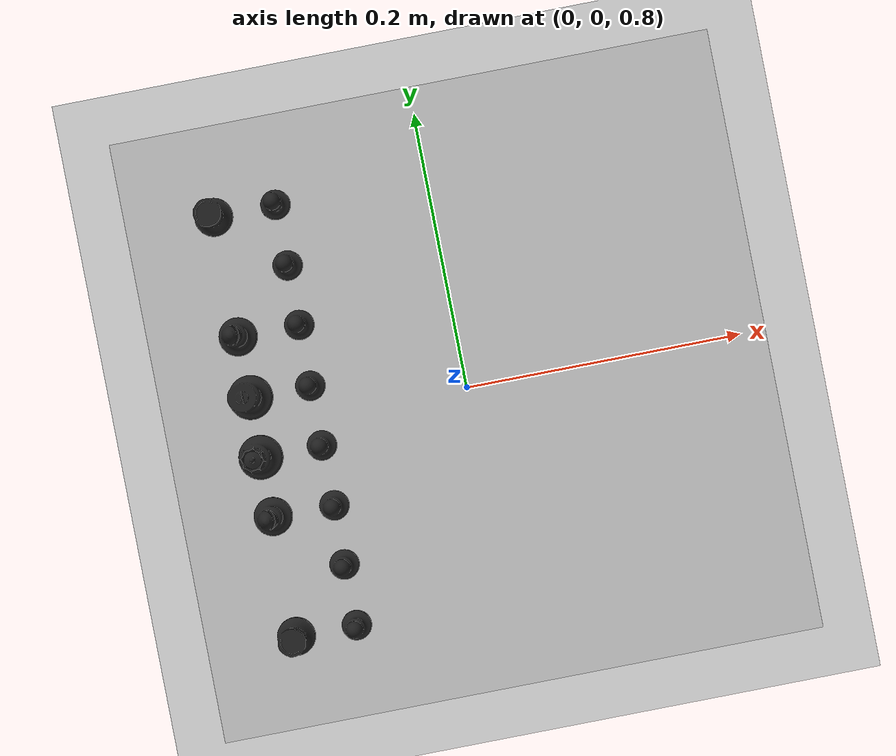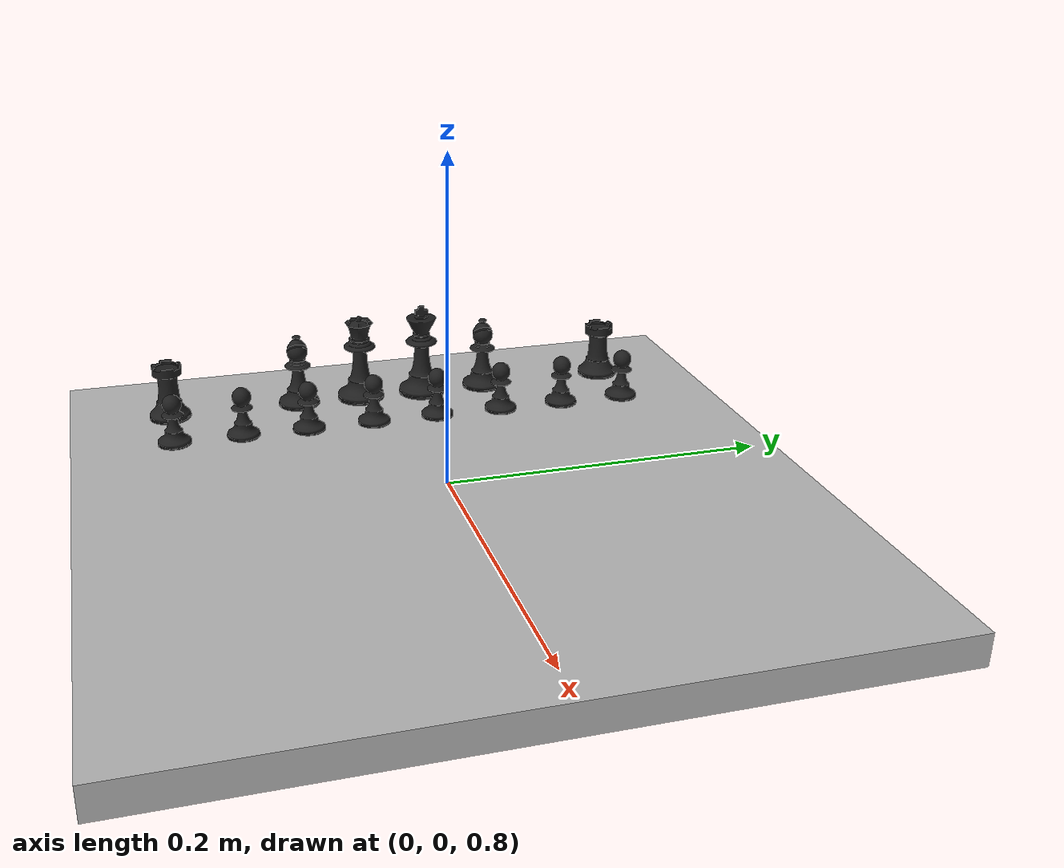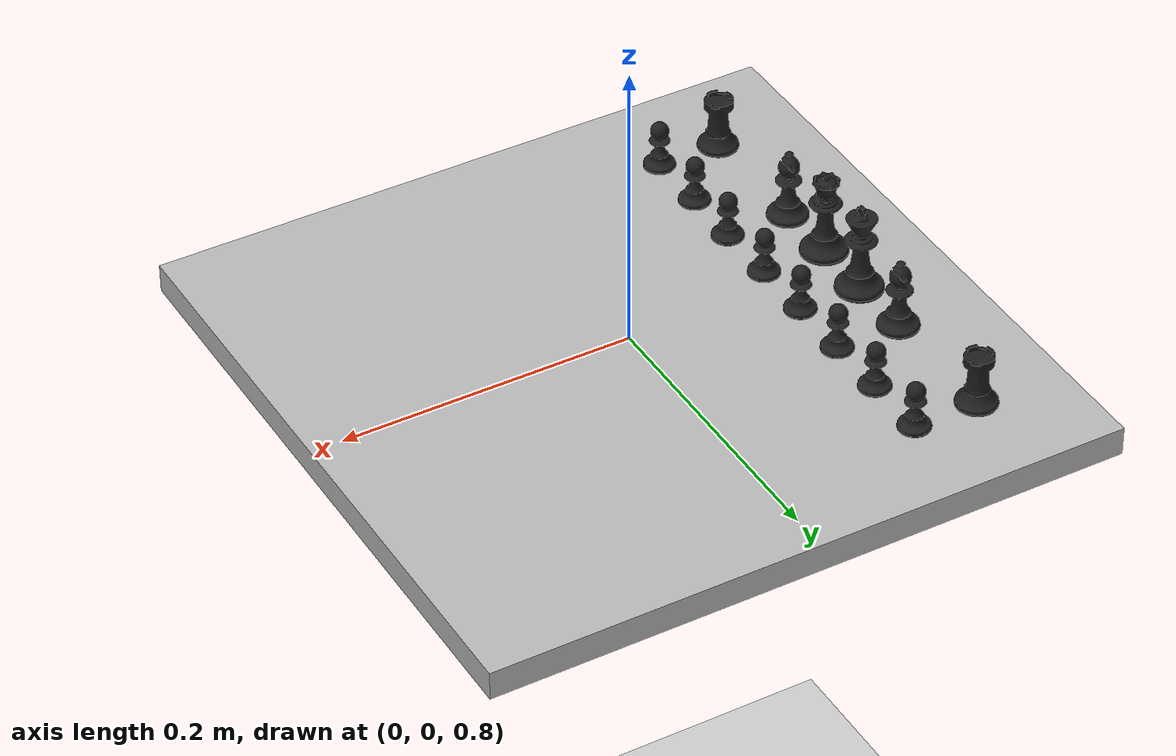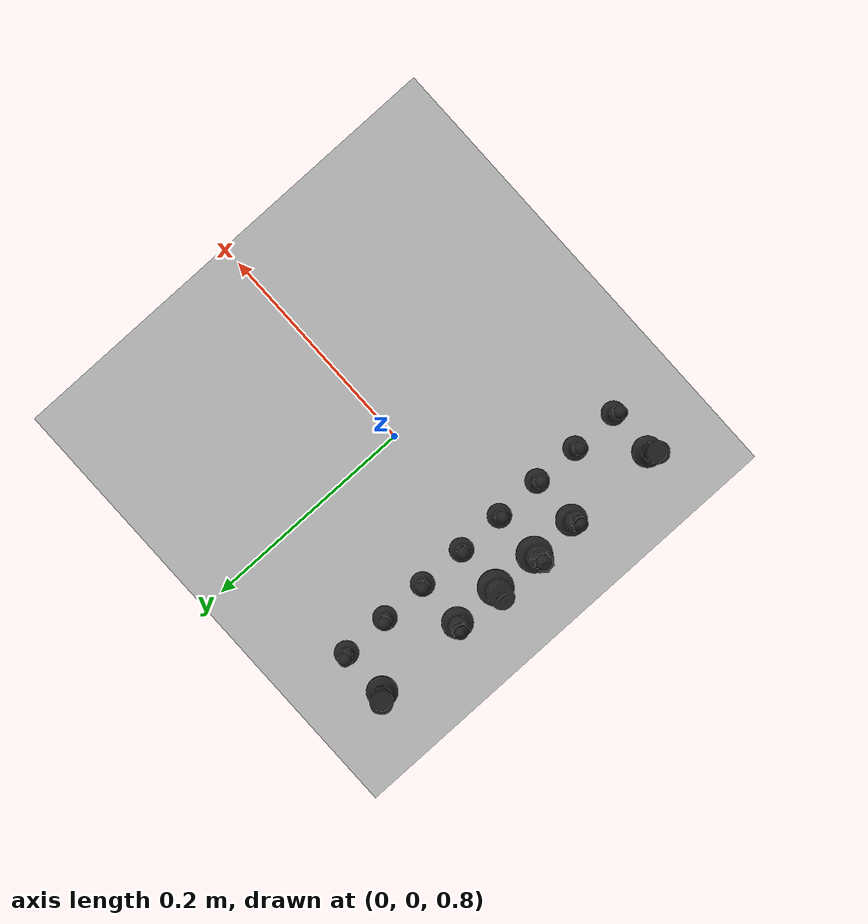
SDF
<sdf version="1.7">
 <world name="default">
  <model name="ground_plane">
   <static>1</static>
   <link name="link">
    <collision name="collision">
     <geometry><plane><normal>0 0 1</normal><size>100 100</size></plane></geometry>
     <surface>
      <contact><collide_bitmask>65535</collide_bitmask></contact>
      <friction><ode><mu>100</mu><mu2>50</mu2></ode></friction>
     </surface>
    </collision>
    <visual name="visual">
     <cast_shadows>0</cast_shadows>
     <geometry><plane><normal>0 0 1</normal><size>100 100</size></plane></geometry>
     <material>
      <script><uri>file://media/materials/scripts/gazebo.material</uri><name>Gazebo/Grey</name></script>
     </material>
    </visual>
   </link>
  </model>
  <model name="chess_board">
   <link name="link">
    <inertial>
     <mass>0.5</mass>
     <inertia>
      <ixx>0.166667</ixx>
      <ixy>0</ixy>
      <ixz>0</ixz>
      <iyy>0.166667</iyy>
      <iyz>0</iyz>
      <izz>0.166667</izz>
     </inertia>
    </inertial>
    <visual name="visual">
     <geometry><box><size>0.44 0.44 0.02</size></box></geometry>
     <material>
      <script>
       <name>ChessBoardMaterial</name>
       <uri>model://chess_board/materials/scripts</uri>
       <uri>model://chess_board/materials/textures</uri>
      </script>
     </material>
    </visual>
    <collision name="collision">
     <geometry><box><size>0.44 0.44 0.02</size></box></geometry>
     <surface>
      <friction>
       <ode><mu>1</mu><mu2>1</mu2><fdir1>0 0 0</fdir1><slip1>0</slip1><slip2>0</slip2></ode>
       <torsional>
        <coefficient>1</coefficient>
        <patch_radius>0</patch_radius>
        <surface_radius>0</surface_radius>
        <use_patch_radius>1</use_patch_radius>
        <ode><slip>0</slip></ode>
       </torsional>
      </friction>
      <bounce><restitution_coefficient>0</restitution_coefficient><threshold>1e+06</threshold></bounce>
      <contact>
       <collide_without_contact>0</collide_without_contact>
       <collide_without_contact_bitmask>1</collide_without_contact_bitmask>
       <collide_bitmask>1</collide_bitmask>
       <ode>
        <soft_cfm>0</soft_cfm>
        <soft_erp>0.2</soft_erp>
        <kp>1e+13</kp>
        <kd>1</kd>
        <max_vel>0.01</max_vel>
        <min_depth>0</min_depth>
       </ode>
       <bullet>
        <split_impulse>1</split_impulse>
        <split_impulse_penetration_threshold>-0.01</split_impulse_penetration_threshold>
        <soft_cfm>0</soft_cfm>
        <soft_erp>0.2</soft_erp>
        <kp>1e+13</kp>
        <kd>1</kd>
       </bullet>
      </contact>
     </surface>
    </collision>
   </link>
   <static>0</static>
   <pose>-0.000715 0.00093 0.785 -0 -0 -3e-06</pose>
  </model>
  <model name="pawn_black">
   <link name="link">
    <inertial>
     <mass>0.1</mass>
     <inertia>
      <ixx>0.166667</ixx>
      <ixy>0</ixy>
      <ixz>0</ixz>
      <iyy>0.166667</iyy>
      <iyz>0</iyz>
      <izz>0.166667</izz>
     </inertia>
    </inertial>
    <visual name="visual">
     <geometry><mesh><uri>model://pawn_black/pawn.stl</uri><scale>0.001 0.001 0.001</scale></mesh></geometry>
     <material>
      <lighting>1</lighting>
      <script><uri>file://media/materials/scripts/gazebo.material</uri><name>Gazebo/Black</name></script>
      <shader type="pixel"><normal_map>__default__</normal_map></shader>
      <ambient>0.3 0.3 0.3 1</ambient>
      <diffuse>0.3 0.3 0.3 1</diffuse>
      <specular>0.1 0.1 0.1 1</specular>
      <emissive>0 0 0 1</emissive>
     </material>
    </visual>
    <collision name="collision">
     <geometry><mesh><uri>model://pawn_black/pawn.stl</uri><scale>0.001 0.001 0.001</scale></mesh></geometry>
     <surface>
      <friction>
       <ode><mu>1</mu><mu2>1</mu2><fdir1>0 0 0</fdir1><slip1>0</slip1><slip2>0</slip2></ode>
       <torsional>
        <coefficient>1</coefficient>
        <patch_radius>0</patch_radius>
        <surface_radius>0</surface_radius>
        <use_patch_radius>1</use_patch_radius>
        <ode><slip>0</slip></ode>
       </torsional>
      </friction>
      <bounce><restitution_coefficient>0</restitution_coefficient><threshold>1e+06</threshold></bounce>
      <contact>
       <collide_without_contact>0</collide_without_contact>
       <collide_without_contact_bitmask>1</collide_without_contact_bitmask>
       <collide_bitmask>1</collide_bitmask>
       <ode>
        <soft_cfm>0</soft_cfm>
        <soft_erp>0.2</soft_erp>
        <kp>1e+13</kp>
        <kd>1</kd>
        <max_vel>0.01</max_vel>
        <min_depth>0</min_depth>
       </ode>
       <bullet>
        <split_impulse>1</split_impulse>
        <split_impulse_penetration_threshold>-0.01</split_impulse_penetration_threshold>
        <soft_cfm>0</soft_cfm>
        <soft_erp>0.2</soft_erp>
        <kp>1e+13</kp>
        <kd>1</kd>
       </bullet>
      </contact>
     </surface>
    </collision>
   </link>
   <static>0</static>
   <pose>-0.111047 -0.153394 0.795229 0.000326 -0.000526 0.002873</pose>
  </model>
  <model name="pawn_black_0">
   <link name="link">
    <inertial>
     <mass>0.1</mass>
     <inertia>
      <ixx>0.166667</ixx>
      <ixy>0</ixy>
      <ixz>0</ixz>
      <iyy>0.166667</iyy>
      <iyz>0</iyz>
      <izz>0.166667</izz>
     </inertia>
    </inertial>
    <visual name="visual">
     <geometry><mesh><uri>model://pawn_black/pawn.stl</uri><scale>0.001 0.001 0.001</scale></mesh></geometry>
     <material>
      <lighting>1</lighting>
      <script><uri>file://media/materials/scripts/gazebo.material</uri><name>Gazebo/Black</name></script>
      <shader type="pixel"><normal_map>__default__</normal_map></shader>
      <ambient>0.3 0.3 0.3 1</ambient>
      <diffuse>0.3 0.3 0.3 1</diffuse>
      <specular>0.1 0.1 0.1 1</specular>
      <emissive>0 0 0 1</emissive>
     </material>
    </visual>
    <collision name="collision">
     <geometry><mesh><uri>model://pawn_black/pawn.stl</uri><scale>0.001 0.001 0.001</scale></mesh></geometry>
     <surface>
      <friction>
       <ode><mu>1</mu><mu2>1</mu2><fdir1>0 0 0</fdir1><slip1>0</slip1><slip2>0</slip2></ode>
       <torsional>
        <coefficient>1</coefficient>
        <patch_radius>0</patch_radius>
        <surface_radius>0</surface_radius>
        <use_patch_radius>1</use_patch_radius>
        <ode><slip>0</slip></ode>
       </torsional>
      </friction>
      <bounce><restitution_coefficient>0</restitution_coefficient><threshold>1e+06</threshold></bounce>
      <contact>
       <collide_without_contact>0</collide_without_contact>
       <collide_without_contact_bitmask>1</collide_without_contact_bitmask>
       <collide_bitmask>1</collide_bitmask>
       <ode>
        <soft_cfm>0</soft_cfm>
        <soft_erp>0.2</soft_erp>
        <kp>1e+13</kp>
        <kd>1</kd>
        <max_vel>0.01</max_vel>
        <min_depth>0</min_depth>
       </ode>
       <bullet>
        <split_impulse>1</split_impulse>
        <split_impulse_penetration_threshold>-0.01</split_impulse_penetration_threshold>
        <soft_cfm>0</soft_cfm>
        <soft_erp>0.2</soft_erp>
        <kp>1e+13</kp>
        <kd>1</kd>
       </bullet>
      </contact>
     </surface>
    </collision>
   </link>
   <static>0</static>
   <pose>-0.111431 -0.108701 0.795228 -0.000458 -0.00031 0.002697</pose>
  </model>
  <model name="pawn_black_1">
   <link name="link">
    <inertial>
     <mass>0.1</mass>
     <inertia>
      <ixx>0.166667</ixx>
      <ixy>0</ixy>
      <ixz>0</ixz>
      <iyy>0.166667</iyy>
      <iyz>0</iyz>
      <izz>0.166667</izz>
     </inertia>
    </inertial>
    <visual name="visual">
     <geometry><mesh><uri>model://pawn_black/pawn.stl</uri><scale>0.001 0.001 0.001</scale></mesh></geometry>
     <material>
      <lighting>1</lighting>
      <script><uri>file://media/materials/scripts/gazebo.material</uri><name>Gazebo/Black</name></script>
      <shader type="pixel"><normal_map>__default__</normal_map></shader>
      <ambient>0.3 0.3 0.3 1</ambient>
      <diffuse>0.3 0.3 0.3 1</diffuse>
      <specular>0.1 0.1 0.1 1</specular>
      <emissive>0 0 0 1</emissive>
     </material>
    </visual>
    <collision name="collision">
     <geometry><mesh><uri>model://pawn_black/pawn.stl</uri><scale>0.001 0.001 0.001</scale></mesh></geometry>
     <surface>
      <friction>
       <ode><mu>1</mu><mu2>1</mu2><fdir1>0 0 0</fdir1><slip1>0</slip1><slip2>0</slip2></ode>
       <torsional>
        <coefficient>1</coefficient>
        <patch_radius>0</patch_radius>
        <surface_radius>0</surface_radius>
        <use_patch_radius>1</use_patch_radius>
        <ode><slip>0</slip></ode>
       </torsional>
      </friction>
      <bounce><restitution_coefficient>0</restitution_coefficient><threshold>1e+06</threshold></bounce>
      <contact>
       <collide_without_contact>0</collide_without_contact>
       <collide_without_contact_bitmask>1</collide_without_contact_bitmask>
       <collide_bitmask>1</collide_bitmask>
       <ode>
        <soft_cfm>0</soft_cfm>
        <soft_erp>0.2</soft_erp>
        <kp>1e+13</kp>
        <kd>1</kd>
        <max_vel>0.01</max_vel>
        <min_depth>0</min_depth>
       </ode>
       <bullet>
        <split_impulse>1</split_impulse>
        <split_impulse_penetration_threshold>-0.01</split_impulse_penetration_threshold>
        <soft_cfm>0</soft_cfm>
        <soft_erp>0.2</soft_erp>
        <kp>1e+13</kp>
        <kd>1</kd>
       </bullet>
      </contact>
     </surface>
    </collision>
   </link>
   <static>0</static>
   <pose>-0.110482 -0.065437 0.795213 -2e-05 0.000329 0.001404</pose>
  </model>
  <model name="pawn_black_2">
   <link name="link">
    <inertial>
     <mass>0.1</mass>
     <inertia>
      <ixx>0.166667</ixx>
      <ixy>0</ixy>
      <ixz>0</ixz>
      <iyy>0.166667</iyy>
      <iyz>0</iyz>
      <izz>0.166667</izz>
     </inertia>
    </inertial>
    <visual name="visual">
     <geometry><mesh><uri>model://pawn_black/pawn.stl</uri><scale>0.001 0.001 0.001</scale></mesh></geometry>
     <material>
      <lighting>1</lighting>
      <script><uri>file://media/materials/scripts/gazebo.material</uri><name>Gazebo/Black</name></script>
      <shader type="pixel"><normal_map>__default__</normal_map></shader>
      <ambient>0.3 0.3 0.3 1</ambient>
      <diffuse>0.3 0.3 0.3 1</diffuse>
      <specular>0.1 0.1 0.1 1</specular>
      <emissive>0 0 0 1</emissive>
     </material>
    </visual>
    <collision name="collision">
     <geometry><mesh><uri>model://pawn_black/pawn.stl</uri><scale>0.001 0.001 0.001</scale></mesh></geometry>
     <surface>
      <friction>
       <ode><mu>1</mu><mu2>1</mu2><fdir1>0 0 0</fdir1><slip1>0</slip1><slip2>0</slip2></ode>
       <torsional>
        <coefficient>1</coefficient>
        <patch_radius>0</patch_radius>
        <surface_radius>0</surface_radius>
        <use_patch_radius>1</use_patch_radius>
        <ode><slip>0</slip></ode>
       </torsional>
      </friction>
      <bounce><restitution_coefficient>0</restitution_coefficient><threshold>1e+06</threshold></bounce>
      <contact>
       <collide_without_contact>0</collide_without_contact>
       <collide_without_contact_bitmask>1</collide_without_contact_bitmask>
       <collide_bitmask>1</collide_bitmask>
       <ode>
        <soft_cfm>0</soft_cfm>
        <soft_erp>0.2</soft_erp>
        <kp>1e+13</kp>
        <kd>1</kd>
        <max_vel>0.01</max_vel>
        <min_depth>0</min_depth>
       </ode>
       <bullet>
        <split_impulse>1</split_impulse>
        <split_impulse_penetration_threshold>-0.01</split_impulse_penetration_threshold>
        <soft_cfm>0</soft_cfm>
        <soft_erp>0.2</soft_erp>
        <kp>1e+13</kp>
        <kd>1</kd>
       </bullet>
      </contact>
     </surface>
    </collision>
   </link>
   <static>0</static>
   <pose>-0.111 -0.021257 0.795185 7e-06 -1.4e-05 0.00068</pose>
  </model>
  <model name="pawn_black_3">
   <link name="link">
    <inertial>
     <mass>0.1</mass>
     <inertia>
      <ixx>0.166667</ixx>
      <ixy>0</ixy>
      <ixz>0</ixz>
      <iyy>0.166667</iyy>
      <iyz>0</iyz>
      <izz>0.166667</izz>
     </inertia>
    </inertial>
    <visual name="visual">
     <geometry><mesh><uri>model://pawn_black/pawn.stl</uri><scale>0.001 0.001 0.001</scale></mesh></geometry>
     <material>
      <lighting>1</lighting>
      <script><uri>file://media/materials/scripts/gazebo.material</uri><name>Gazebo/Black</name></script>
      <shader type="pixel"><normal_map>__default__</normal_map></shader>
      <ambient>0.3 0.3 0.3 1</ambient>
      <diffuse>0.3 0.3 0.3 1</diffuse>
      <specular>0.1 0.1 0.1 1</specular>
      <emissive>0 0 0 1</emissive>
     </material>
    </visual>
    <collision name="collision">
     <geometry><mesh><uri>model://pawn_black/pawn.stl</uri><scale>0.001 0.001 0.001</scale></mesh></geometry>
     <surface>
      <friction>
       <ode><mu>1</mu><mu2>1</mu2><fdir1>0 0 0</fdir1><slip1>0</slip1><slip2>0</slip2></ode>
       <torsional>
        <coefficient>1</coefficient>
        <patch_radius>0</patch_radius>
        <surface_radius>0</surface_radius>
        <use_patch_radius>1</use_patch_radius>
        <ode><slip>0</slip></ode>
       </torsional>
      </friction>
      <bounce><restitution_coefficient>0</restitution_coefficient><threshold>1e+06</threshold></bounce>
      <contact>
       <collide_without_contact>0</collide_without_contact>
       <collide_without_contact_bitmask>1</collide_without_contact_bitmask>
       <collide_bitmask>1</collide_bitmask>
       <ode>
        <soft_cfm>0</soft_cfm>
        <soft_erp>0.2</soft_erp>
        <kp>1e+13</kp>
        <kd>1</kd>
        <max_vel>0.01</max_vel>
        <min_depth>0</min_depth>
       </ode>
       <bullet>
        <split_impulse>1</split_impulse>
        <split_impulse_penetration_threshold>-0.01</split_impulse_penetration_threshold>
        <soft_cfm>0</soft_cfm>
        <soft_erp>0.2</soft_erp>
        <kp>1e+13</kp>
        <kd>1</kd>
       </bullet>
      </contact>
     </surface>
    </collision>
   </link>
   <static>0</static>
   <pose>-0.111044 0.022583 0.795229 -0.000575 -9.8e-05 0.000481</pose>
  </model>
  <model name="pawn_black_4">
   <link name="link">
    <inertial>
     <mass>0.1</mass>
     <inertia>
      <ixx>0.166667</ixx>
      <ixy>0</ixy>
      <ixz>0</ixz>
      <iyy>0.166667</iyy>
      <iyz>0</iyz>
      <izz>0.166667</izz>
     </inertia>
    </inertial>
    <visual name="visual">
     <geometry><mesh><uri>model://pawn_black/pawn.stl</uri><scale>0.001 0.001 0.001</scale></mesh></geometry>
     <material>
      <lighting>1</lighting>
      <script><uri>file://media/materials/scripts/gazebo.material</uri><name>Gazebo/Black</name></script>
      <shader type="pixel"><normal_map>__default__</normal_map></shader>
      <ambient>0.3 0.3 0.3 1</ambient>
      <diffuse>0.3 0.3 0.3 1</diffuse>
      <specular>0.1 0.1 0.1 1</specular>
      <emissive>0 0 0 1</emissive>
     </material>
    </visual>
    <collision name="collision">
     <geometry><mesh><uri>model://pawn_black/pawn.stl</uri><scale>0.001 0.001 0.001</scale></mesh></geometry>
     <surface>
      <friction>
       <ode><mu>1</mu><mu2>1</mu2><fdir1>0 0 0</fdir1><slip1>0</slip1><slip2>0</slip2></ode>
       <torsional>
        <coefficient>1</coefficient>
        <patch_radius>0</patch_radius>
        <surface_radius>0</surface_radius>
        <use_patch_radius>1</use_patch_radius>
        <ode><slip>0</slip></ode>
       </torsional>
      </friction>
      <bounce><restitution_coefficient>0</restitution_coefficient><threshold>1e+06</threshold></bounce>
      <contact>
       <collide_without_contact>0</collide_without_contact>
       <collide_without_contact_bitmask>1</collide_without_contact_bitmask>
       <collide_bitmask>1</collide_bitmask>
       <ode>
        <soft_cfm>0</soft_cfm>
        <soft_erp>0.2</soft_erp>
        <kp>1e+13</kp>
        <kd>1</kd>
        <max_vel>0.01</max_vel>
        <min_depth>0</min_depth>
       </ode>
       <bullet>
        <split_impulse>1</split_impulse>
        <split_impulse_penetration_threshold>-0.01</split_impulse_penetration_threshold>
        <soft_cfm>0</soft_cfm>
        <soft_erp>0.2</soft_erp>
        <kp>1e+13</kp>
        <kd>1</kd>
       </bullet>
      </contact>
     </surface>
    </collision>
   </link>
   <static>0</static>
   <pose>-0.110499 0.067284 0.795228 -0.000563 -8.9e-05 -0.000286</pose>
  </model>
  <model name="pawn_black_5">
   <link name="link">
    <inertial>
     <mass>0.1</mass>
     <inertia>
      <ixx>0.166667</ixx>
      <ixy>0</ixy>
      <ixz>0</ixz>
      <iyy>0.166667</iyy>
      <iyz>0</iyz>
      <izz>0.166667</izz>
     </inertia>
    </inertial>
    <visual name="visual">
     <geometry><mesh><uri>model://pawn_black/pawn.stl</uri><scale>0.001 0.001 0.001</scale></mesh></geometry>
     <material>
      <lighting>1</lighting>
      <script><uri>file://media/materials/scripts/gazebo.material</uri><name>Gazebo/Black</name></script>
      <shader type="pixel"><normal_map>__default__</normal_map></shader>
      <ambient>0.3 0.3 0.3 1</ambient>
      <diffuse>0.3 0.3 0.3 1</diffuse>
      <specular>0.1 0.1 0.1 1</specular>
      <emissive>0 0 0 1</emissive>
     </material>
    </visual>
    <collision name="collision">
     <geometry><mesh><uri>model://pawn_black/pawn.stl</uri><scale>0.001 0.001 0.001</scale></mesh></geometry>
     <surface>
      <friction>
       <ode><mu>1</mu><mu2>1</mu2><fdir1>0 0 0</fdir1><slip1>0</slip1><slip2>0</slip2></ode>
       <torsional>
        <coefficient>1</coefficient>
        <patch_radius>0</patch_radius>
        <surface_radius>0</surface_radius>
        <use_patch_radius>1</use_patch_radius>
        <ode><slip>0</slip></ode>
       </torsional>
      </friction>
      <bounce><restitution_coefficient>0</restitution_coefficient><threshold>1e+06</threshold></bounce>
      <contact>
       <collide_without_contact>0</collide_without_contact>
       <collide_without_contact_bitmask>1</collide_without_contact_bitmask>
       <collide_bitmask>1</collide_bitmask>
       <ode>
        <soft_cfm>0</soft_cfm>
        <soft_erp>0.2</soft_erp>
        <kp>1e+13</kp>
        <kd>1</kd>
        <max_vel>0.01</max_vel>
        <min_depth>0</min_depth>
       </ode>
       <bullet>
        <split_impulse>1</split_impulse>
        <split_impulse_penetration_threshold>-0.01</split_impulse_penetration_threshold>
        <soft_cfm>0</soft_cfm>
        <soft_erp>0.2</soft_erp>
        <kp>1e+13</kp>
        <kd>1</kd>
       </bullet>
      </contact>
     </surface>
    </collision>
   </link>
   <static>0</static>
   <pose>-0.110535 0.111009 0.795226 -0.000238 -0.000227 -0.000332</pose>
  </model>
  <model name="pawn_black_6">
   <link name="link">
    <inertial>
     <mass>0.1</mass>
     <inertia>
      <ixx>0.166667</ixx>
      <ixy>0</ixy>
      <ixz>0</ixz>
      <iyy>0.166667</iyy>
      <iyz>0</iyz>
      <izz>0.166667</izz>
     </inertia>
    </inertial>
    <visual name="visual">
     <geometry><mesh><uri>model://pawn_black/pawn.stl</uri><scale>0.001 0.001 0.001</scale></mesh></geometry>
     <material>
      <lighting>1</lighting>
      <script><uri>file://media/materials/scripts/gazebo.material</uri><name>Gazebo/Black</name></script>
      <shader type="pixel"><normal_map>__default__</normal_map></shader>
      <ambient>0.3 0.3 0.3 1</ambient>
      <diffuse>0.3 0.3 0.3 1</diffuse>
      <specular>0.1 0.1 0.1 1</specular>
      <emissive>0 0 0 1</emissive>
     </material>
    </visual>
    <collision name="collision">
     <geometry><mesh><uri>model://pawn_black/pawn.stl</uri><scale>0.001 0.001 0.001</scale></mesh></geometry>
     <surface>
      <friction>
       <ode><mu>1</mu><mu2>1</mu2><fdir1>0 0 0</fdir1><slip1>0</slip1><slip2>0</slip2></ode>
       <torsional>
        <coefficient>1</coefficient>
        <patch_radius>0</patch_radius>
        <surface_radius>0</surface_radius>
        <use_patch_radius>1</use_patch_radius>
        <ode><slip>0</slip></ode>
       </torsional>
      </friction>
      <bounce><restitution_coefficient>0</restitution_coefficient><threshold>1e+06</threshold></bounce>
      <contact>
       <collide_without_contact>0</collide_without_contact>
       <collide_without_contact_bitmask>1</collide_without_contact_bitmask>
       <collide_bitmask>1</collide_bitmask>
       <ode>
        <soft_cfm>0</soft_cfm>
        <soft_erp>0.2</soft_erp>
        <kp>1e+13</kp>
        <kd>1</kd>
        <max_vel>0.01</max_vel>
        <min_depth>0</min_depth>
       </ode>
       <bullet>
        <split_impulse>1</split_impulse>
        <split_impulse_penetration_threshold>-0.01</split_impulse_penetration_threshold>
        <soft_cfm>0</soft_cfm>
        <soft_erp>0.2</soft_erp>
        <kp>1e+13</kp>
        <kd>1</kd>
       </bullet>
      </contact>
     </surface>
    </collision>
   </link>
   <static>0</static>
   <pose>-0.110825 0.155668 0.795226 0.000345 -0.000136 -0.001446</pose>
  </model>
  <model name="rook_black">
   <link name="link">
    <inertial>
     <mass>0.1</mass>
     <inertia>
      <ixx>0.166667</ixx>
      <ixy>0</ixy>
      <ixz>0</ixz>
      <iyy>0.166667</iyy>
      <iyz>0</iyz>
      <izz>0.166667</izz>
     </inertia>
    </inertial>
    <visual name="visual">
     <geometry><mesh><uri>model://rook_black/rook.stl</uri><scale>0.001 0.001 0.001</scale></mesh></geometry>
     <material>
      <lighting>1</lighting>
      <script><uri>file://media/materials/scripts/gazebo.material</uri><name>Gazebo/Black</name></script>
      <shader type="pixel"><normal_map>__default__</normal_map></shader>
      <ambient>0.3 0.3 0.3 1</ambient>
      <diffuse>0.3 0.3 0.3 1</diffuse>
      <specular>0.1 0.1 0.1 1</specular>
      <emissive>0 0 0 1</emissive>
     </material>
    </visual>
    <collision name="collision">
     <geometry><mesh><uri>model://rook_black/rook.stl</uri><scale>0.001 0.001 0.001</scale></mesh></geometry>
     <surface>
      <friction>
       <ode><mu>1</mu><mu2>1</mu2><fdir1>0 0 0</fdir1><slip1>0</slip1><slip2>0</slip2></ode>
       <torsional>
        <coefficient>1</coefficient>
        <patch_radius>0</patch_radius>
        <surface_radius>0</surface_radius>
        <use_patch_radius>1</use_patch_radius>
        <ode><slip>0</slip></ode>
       </torsional>
      </friction>
      <bounce><restitution_coefficient>0</restitution_coefficient><threshold>1e+06</threshold></bounce>
      <contact>
       <collide_without_contact>0</collide_without_contact>
       <collide_without_contact_bitmask>1</collide_without_contact_bitmask>
       <collide_bitmask>1</collide_bitmask>
       <ode>
        <soft_cfm>0</soft_cfm>
        <soft_erp>0.2</soft_erp>
        <kp>1e+13</kp>
        <kd>1</kd>
        <max_vel>0.01</max_vel>
        <min_depth>0</min_depth>
       </ode>
       <bullet>
        <split_impulse>1</split_impulse>
        <split_impulse_penetration_threshold>-0.01</split_impulse_penetration_threshold>
        <soft_cfm>0</soft_cfm>
        <soft_erp>0.2</soft_erp>
        <kp>1e+13</kp>
        <kd>1</kd>
       </bullet>
      </contact>
     </surface>
    </collision>
   </link>
   <static>0</static>
   <pose>-0.15535 -0.153035 0.795174 3.4e-05 -9e-06 -0.000477</pose>
  </model>
  <model name="rook_black_0">
   <link name="link">
    <inertial>
     <mass>0.1</mass>
     <inertia>
      <ixx>0.166667</ixx>
      <ixy>0</ixy>
      <ixz>0</ixz>
      <iyy>0.166667</iyy>
      <iyz>0</iyz>
      <izz>0.166667</izz>
     </inertia>
    </inertial>
    <visual name="visual">
     <geometry><mesh><uri>model://rook_black/rook.stl</uri><scale>0.001 0.001 0.001</scale></mesh></geometry>
     <material>
      <lighting>1</lighting>
      <script><uri>file://media/materials/scripts/gazebo.material</uri><name>Gazebo/Black</name></script>
      <shader type="pixel"><normal_map>__default__</normal_map></shader>
      <ambient>0.3 0.3 0.3 1</ambient>
      <diffuse>0.3 0.3 0.3 1</diffuse>
      <specular>0.1 0.1 0.1 1</specular>
      <emissive>0 0 0 1</emissive>
     </material>
    </visual>
    <collision name="collision">
     <geometry><mesh><uri>model://rook_black/rook.stl</uri><scale>0.001 0.001 0.001</scale></mesh></geometry>
     <surface>
      <friction>
       <ode><mu>1</mu><mu2>1</mu2><fdir1>0 0 0</fdir1><slip1>0</slip1><slip2>0</slip2></ode>
       <torsional>
        <coefficient>1</coefficient>
        <patch_radius>0</patch_radius>
        <surface_radius>0</surface_radius>
        <use_patch_radius>1</use_patch_radius>
        <ode><slip>0</slip></ode>
       </torsional>
      </friction>
      <bounce><restitution_coefficient>0</restitution_coefficient><threshold>1e+06</threshold></bounce>
      <contact>
       <collide_without_contact>0</collide_without_contact>
       <collide_without_contact_bitmask>1</collide_without_contact_bitmask>
       <collide_bitmask>1</collide_bitmask>
       <ode>
        <soft_cfm>0</soft_cfm>
        <soft_erp>0.2</soft_erp>
        <kp>1e+13</kp>
        <kd>1</kd>
        <max_vel>0.01</max_vel>
        <min_depth>0</min_depth>
       </ode>
       <bullet>
        <split_impulse>1</split_impulse>
        <split_impulse_penetration_threshold>-0.01</split_impulse_penetration_threshold>
        <soft_cfm>0</soft_cfm>
        <soft_erp>0.2</soft_erp>
        <kp>1e+13</kp>
        <kd>1</kd>
       </bullet>
      </contact>
     </surface>
    </collision>
   </link>
   <static>0</static>
   <pose>-0.156229 0.155321 0.795174 5.1e-05 -4.7e-05 -0.000693</pose>
  </model>
  <model name="bishop_black">
   <link name="link">
    <inertial>
     <mass>0.1</mass>
     <inertia>
      <ixx>0.166667</ixx>
      <ixy>0</ixy>
      <ixz>0</ixz>
      <iyy>0.166667</iyy>
      <iyz>0</iyz>
      <izz>0.166667</izz>
     </inertia>
    </inertial>
    <visual name="visual">
     <geometry><mesh><uri>model://bishop_black/bishop.stl</uri><scale>0.001 0.001 0.001</scale></mesh></geometry>
     <material>
      <lighting>1</lighting>
      <script><uri>file://media/materials/scripts/gazebo.material</uri><name>Gazebo/Black</name></script>
      <shader type="pixel"><normal_map>__default__</normal_map></shader>
      <ambient>0.3 0.3 0.3 1</ambient>
      <diffuse>0.3 0.3 0.3 1</diffuse>
      <specular>0.1 0.1 0.1 1</specular>
      <emissive>0 0 0 1</emissive>
     </material>
    </visual>
    <collision name="collision">
     <geometry><mesh><uri>model://bishop_black/bishop.stl</uri><scale>0.001 0.001 0.001</scale></mesh></geometry>
     <surface>
      <friction>
       <ode><mu>1</mu><mu2>1</mu2><fdir1>0 0 0</fdir1><slip1>0</slip1><slip2>0</slip2></ode>
       <torsional>
        <coefficient>1</coefficient>
        <patch_radius>0</patch_radius>
        <surface_radius>0</surface_radius>
        <use_patch_radius>1</use_patch_radius>
        <ode><slip>0</slip></ode>
       </torsional>
      </friction>
      <bounce><restitution_coefficient>0</restitution_coefficient><threshold>1e+06</threshold></bounce>
      <contact>
       <collide_without_contact>0</collide_without_contact>
       <collide_without_contact_bitmask>1</collide_without_contact_bitmask>
       <collide_bitmask>1</collide_bitmask>
       <ode>
        <soft_cfm>0</soft_cfm>
        <soft_erp>0.2</soft_erp>
        <kp>1e+13</kp>
        <kd>1</kd>
        <max_vel>0.01</max_vel>
        <min_depth>0</min_depth>
       </ode>
       <bullet>
        <split_impulse>1</split_impulse>
        <split_impulse_penetration_threshold>-0.01</split_impulse_penetration_threshold>
        <soft_cfm>0</soft_cfm>
        <soft_erp>0.2</soft_erp>
        <kp>1e+13</kp>
        <kd>1</kd>
       </bullet>
      </contact>
     </surface>
    </collision>
   </link>
   <static>0</static>
   <pose>-0.155331 -0.064933 0.79505 2.5e-05 -1.1e-05 -3.14146</pose>
  </model>
  <model name="bishop_black_0">
   <link name="link">
    <inertial>
     <mass>0.1</mass>
     <inertia>
      <ixx>0.166667</ixx>
      <ixy>0</ixy>
      <ixz>0</ixz>
      <iyy>0.166667</iyy>
      <iyz>0</iyz>
      <izz>0.166667</izz>
     </inertia>
    </inertial>
    <visual name="visual">
     <geometry><mesh><uri>model://bishop_black/bishop.stl</uri><scale>0.001 0.001 0.001</scale></mesh></geometry>
     <material>
      <lighting>1</lighting>
      <script><uri>file://media/materials/scripts/gazebo.material</uri><name>Gazebo/Black</name></script>
      <shader type="pixel"><normal_map>__default__</normal_map></shader>
      <ambient>0.3 0.3 0.3 1</ambient>
      <diffuse>0.3 0.3 0.3 1</diffuse>
      <specular>0.1 0.1 0.1 1</specular>
      <emissive>0 0 0 1</emissive>
     </material>
    </visual>
    <collision name="collision">
     <geometry><mesh><uri>model://bishop_black/bishop.stl</uri><scale>0.001 0.001 0.001</scale></mesh></geometry>
     <surface>
      <friction>
       <ode><mu>1</mu><mu2>1</mu2><fdir1>0 0 0</fdir1><slip1>0</slip1><slip2>0</slip2></ode>
       <torsional>
        <coefficient>1</coefficient>
        <patch_radius>0</patch_radius>
        <surface_radius>0</surface_radius>
        <use_patch_radius>1</use_patch_radius>
        <ode><slip>0</slip></ode>
       </torsional>
      </friction>
      <bounce><restitution_coefficient>0</restitution_coefficient><threshold>1e+06</threshold></bounce>
      <contact>
       <collide_without_contact>0</collide_without_contact>
       <collide_without_contact_bitmask>1</collide_without_contact_bitmask>
       <collide_bitmask>1</collide_bitmask>
       <ode>
        <soft_cfm>0</soft_cfm>
        <soft_erp>0.2</soft_erp>
        <kp>1e+13</kp>
        <kd>1</kd>
        <max_vel>0.01</max_vel>
        <min_depth>0</min_depth>
       </ode>
       <bullet>
        <split_impulse>1</split_impulse>
        <split_impulse_penetration_threshold>-0.01</split_impulse_penetration_threshold>
        <soft_cfm>0</soft_cfm>
        <soft_erp>0.2</soft_erp>
        <kp>1e+13</kp>
        <kd>1</kd>
       </bullet>
      </contact>
     </surface>
    </collision>
   </link>
   <static>0</static>
   <pose>-0.15546 0.067271 0.795043 0.000338 -2.3e-05 -3.14127</pose>
  </model>
  <model name="queen_black">
   <link name="link">
    <inertial>
     <mass>0.1</mass>
     <inertia>
      <ixx>0.166667</ixx>
      <ixy>0</ixy>
      <ixz>0</ixz>
      <iyy>0.166667</iyy>
      <iyz>0</iyz>
      <izz>0.166667</izz>
     </inertia>
    </inertial>
    <visual name="visual">
     <geometry><mesh><uri>model://queen_black/queen.stl</uri><scale>0.001 0.001 0.001</scale></mesh></geometry>
     <material>
      <lighting>1</lighting>
      <script><uri>file://media/materials/scripts/gazebo.material</uri><name>Gazebo/Black</name></script>
      <shader type="pixel"><normal_map>__default__</normal_map></shader>
      <ambient>0.3 0.3 0.3 1</ambient>
      <diffuse>0.3 0.3 0.3 1</diffuse>
      <specular>0.1 0.1 0.1 1</specular>
      <emissive>0 0 0 1</emissive>
     </material>
    </visual>
    <collision name="collision">
     <geometry><mesh><uri>model://queen_black/queen.stl</uri><scale>0.001 0.001 0.001</scale></mesh></geometry>
     <surface>
      <friction>
       <ode><mu>1</mu><mu2>1</mu2><fdir1>0 0 0</fdir1><slip1>0</slip1><slip2>0</slip2></ode>
       <torsional>
        <coefficient>1</coefficient>
        <patch_radius>0</patch_radius>
        <surface_radius>0</surface_radius>
        <use_patch_radius>1</use_patch_radius>
        <ode><slip>0</slip></ode>
       </torsional>
      </friction>
      <bounce><restitution_coefficient>0</restitution_coefficient><threshold>1e+06</threshold></bounce>
      <contact>
       <collide_without_contact>0</collide_without_contact>
       <collide_without_contact_bitmask>1</collide_without_contact_bitmask>
       <collide_bitmask>1</collide_bitmask>
       <ode>
        <soft_cfm>0</soft_cfm>
        <soft_erp>0.2</soft_erp>
        <kp>1e+13</kp>
        <kd>1</kd>
        <max_vel>0.01</max_vel>
        <min_depth>0</min_depth>
       </ode>
       <bullet>
        <split_impulse>1</split_impulse>
        <split_impulse_penetration_threshold>-0.01</split_impulse_penetration_threshold>
        <soft_cfm>0</soft_cfm>
        <soft_erp>0.2</soft_erp>
        <kp>1e+13</kp>
        <kd>1</kd>
       </bullet>
      </contact>
     </surface>
    </collision>
   </link>
   <static>0</static>
   <pose>-0.155918 -0.021292 0.794893 7e-06 -9e-06 -0.000492</pose>
  </model>
  <model name="king_black">
   <link name="link">
    <inertial>
     <mass>0.1</mass>
     <inertia>
      <ixx>0.166667</ixx>
      <ixy>0</ixy>
      <ixz>0</ixz>
      <iyy>0.166667</iyy>
      <iyz>0</iyz>
      <izz>0.166667</izz>
     </inertia>
    </inertial>
    <visual name="visual">
     <geometry><mesh><uri>model://king_black/king.stl</uri><scale>0.001 0.001 0.001</scale></mesh></geometry>
     <material>
      <lighting>1</lighting>
      <script><uri>file://media/materials/scripts/gazebo.material</uri><name>Gazebo/Black</name></script>
      <shader type="pixel"><normal_map>__default__</normal_map></shader>
      <ambient>0.3 0.3 0.3 1</ambient>
      <diffuse>0.3 0.3 0.3 1</diffuse>
      <specular>0.1 0.1 0.1 1</specular>
      <emissive>0 0 0 1</emissive>
     </material>
    </visual>
    <collision name="collision">
     <geometry><mesh><uri>model://king_black/king.stl</uri><scale>0.001 0.001 0.001</scale></mesh></geometry>
     <surface>
      <friction>
       <ode><mu>1</mu><mu2>1</mu2><fdir1>0 0 0</fdir1><slip1>0</slip1><slip2>0</slip2></ode>
       <torsional>
        <coefficient>1</coefficient>
        <patch_radius>0</patch_radius>
        <surface_radius>0</surface_radius>
        <use_patch_radius>1</use_patch_radius>
        <ode><slip>0</slip></ode>
       </torsional>
      </friction>
      <bounce><restitution_coefficient>0</restitution_coefficient><threshold>1e+06</threshold></bounce>
      <contact>
       <collide_without_contact>0</collide_without_contact>
       <collide_without_contact_bitmask>1</collide_without_contact_bitmask>
       <collide_bitmask>1</collide_bitmask>
       <ode>
        <soft_cfm>0</soft_cfm>
        <soft_erp>0.2</soft_erp>
        <kp>1e+13</kp>
        <kd>1</kd>
        <max_vel>0.01</max_vel>
        <min_depth>0</min_depth>
       </ode>
       <bullet>
        <split_impulse>1</split_impulse>
        <split_impulse_penetration_threshold>-0.01</split_impulse_penetration_threshold>
        <soft_cfm>0</soft_cfm>
        <soft_erp>0.2</soft_erp>
        <kp>1e+13</kp>
        <kd>1</kd>
       </bullet>
      </contact>
     </surface>
    </collision>
   </link>
   <static>0</static>
   <pose>-0.154854 0.022526 0.794677 6e-06 -6e-06 1.57062</pose>
  </model>
 </world>
</sdf>
